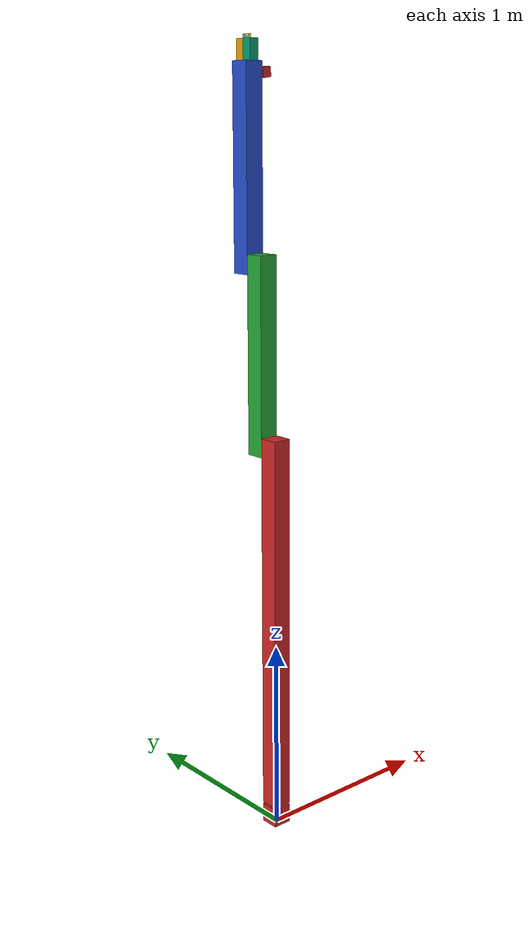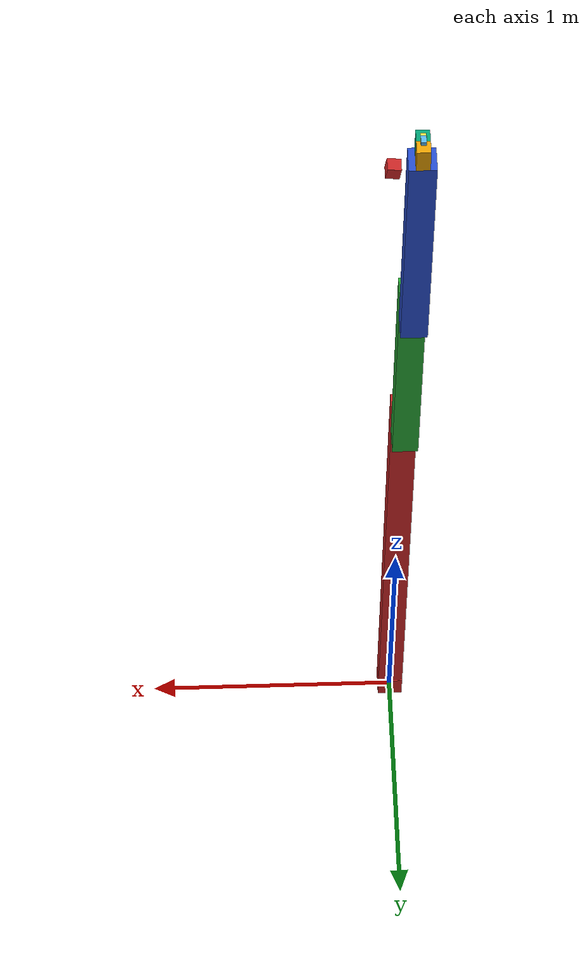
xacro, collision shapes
<?xml version="1.0"?>
<!-- Revolute-Revolute Manipulator -->
<robot name="rrbot" xmlns:xacro="http://www.ros.org/wiki/xacro">

  <!-- Constants for robot dimensions -->
  <xacro:property name="PI" value="3.14"/>
  <xacro:property name="width" value="0.1" />   <!-- Beams are square in length and width -->
  <xacro:property name="height0" value="0.1" />   <!-- base rotation joint -->
  <xacro:property name="height1" value="2" />   <!-- Link 1 -->
  <xacro:property name="height2" value="1" />   <!-- Link 2 -->
  <xacro:property name="height3" value="1" />   <!-- Link 3 -->
  <xacro:property name="axle_offset" value="0.05" /> <!-- Space between joint and end of beam -->
  <xacro:property name="damp" value="0.7" />    <!-- damping coefficient -->
  <xacro:property name="camera_link" value="0.05" /> <!-- Size of square 'camera' box -->

  <!-- Default Inertial -->
  <xacro:macro name="default_inertial" params="z_value i_value mass">
    <inertial>
      <origin xyz="0 0 ${z_value}" rpy="0 0 0"/>
      <mass value="${mass}" />
      <inertia ixx="${i_value}" ixy="0.0" ixz="0.0"
               iyy="${i_value}" iyz="0.0"
               izz="${i_value}" />
      </inertial>
  </xacro:macro>

  <!-- Import Rviz colors -->
  <xacro:include filename="$(find rrbot)/urdf/materials.xacro" />

  <!-- Import gripper URDF -->
  <xacro:include filename="$(find rrbot)/urdf/gripper.xacro" />

  <!-- Import Gazebo elements, including Gazebo colors -->
  <xacro:include filename="$(find rrbot)/urdf/rrbot.gazebo" />

  <!-- Used for fixing rrbot frame to Gazebo world frame -->
  <link name="world"/>

  <joint name="fixed" type="fixed">
    <parent link="world"/>
    <child link="base_link"/>
  </joint>

  <!-- Base Link for rotation -->
  <link name="base_link">
    <visual>
      <origin xyz="0 0 ${height0/2}" rpy="0 0 0"/>
      <geometry>
	<box size="${width} ${width} ${height0}"/>
      </geometry>
      <material name="red"/>
    </visual>

    <collision>
      <origin xyz="0 0 ${height0/2}" rpy="0 0 0"/>
      <geometry>
	<box size="${width} ${width} ${height0}"/>
      </geometry>
    </collision>

    <xacro:default_inertial z_value="${height0/2}" i_value="1.0" mass="1"/>
  </link>

  <!-- Joint between rotation and main Link -->
  <joint name="joint_rot_main" type="revolute">
    <parent link="base_link"/>
    <child link="main_link"/>
    <origin xyz="0 0 ${height0 +0.01 }" rpy="0 0 0"/>
    <axis xyz="0 0 1"/>
    <dynamics damping="${damp}"/>
    <limit effort="100.0" velocity="0.5" lower="-3.14" upper="3.14" />
  </joint>

  <!-- main Link -->
  <link name="main_link">
    <visual>
      <origin xyz="0 0 ${height1/2}" rpy="0 0 0"/>
      <geometry>
	<box size="${width} ${width} ${height1}"/>
      </geometry>
      <material name="red"/>
    </visual>

    <collision>
      <origin xyz="0 0 ${height1/2}" rpy="0 0 0"/>
      <geometry>
	<box size="${width} ${width} ${height1}"/>
      </geometry>
    </collision>

    <xacro:default_inertial z_value="${height1/2}" i_value="1.0" mass="1"/>
  </link>

  <!-- Joint between Base Link and Middle Link -->
  <joint name="joint_main_mid" type="revolute">
    <parent link="main_link"/>
    <child link="mid_link"/>
    <origin xyz="0 ${width} ${height1 - axle_offset}" rpy="0 0 0"/>
    <axis xyz="0 1 0"/>
    <dynamics damping="${damp}"/>
    <limit effort="100.0" velocity="0.5" lower="-3.14" upper="3.14" />
  </joint>

  <!-- Middle Link -->
  <link name="mid_link">
    <visual>
      <origin xyz="0 0 ${height2/2 - axle_offset}" rpy="0 0 0"/>
      <geometry>
	<box size="${width} ${width} ${height2}"/>
      </geometry>
      <material name="green"/>
    </visual>

    <collision>
      <origin xyz="0 0 ${height2/2 - axle_offset}" rpy="0 0 0"/>
      <geometry>
	<box size="${width} ${width} ${height2}"/>
      </geometry>
    </collision>

    <xacro:default_inertial z_value="${height2/2 - axle_offset}" i_value="1.0" mass="1"/>
  </link>

  <!-- Joint between Middle Link and Top Link -->
  <joint name="joint_mid_top" type="revolute">
    <parent link="mid_link"/>
    <child link="top_link"/>
    <origin xyz="0 ${width} ${height2 - axle_offset*2}" rpy="0 0 0"/>
    <axis xyz="0 1 0"/>
    <dynamics damping="${damp}"/>
    <limit effort="100.0" velocity="0.5" lower="-3.14" upper="3.14" />
  </joint>

  <!-- Top Link -->
  <link name="top_link">
    <visual>
      <origin xyz="0 0 ${height3/2 - axle_offset}" rpy="0 0 0"/>
      <geometry>
	<box size="${width} ${width} ${height3}"/>
      </geometry>
      <material name="blue"/>
    </visual>

    <collision>
      <origin xyz="0 0 ${height3/2 - axle_offset}" rpy="0 0 0"/>
      <geometry>
	<box size="${width} ${width} ${height3}"/>
      </geometry>
    </collision>

    <xacro:default_inertial z_value="${height3/2 - axle_offset}" i_value="1.0" mass="1"/>
  </link>

<!-- camera joint-->
  <joint name="camera_joint" type="fixed">

    <origin xyz="${camera_link*2} 0 ${height3 - axle_offset*2}" rpy="0 -1.71 0"/>
    <parent link="top_link"/>
    <child link="camera_link"/>
  </joint>

  <joint name="camera_optical_joint" type="fixed">
    <!-- these values have to be these values otherwise the gazebo camera
        image won't be aligned properly with the frame it is supposedly
        originating from -->
    <origin xyz="0 0 0" rpy="${-pi/2} 0 ${-pi/2}"/>
    <parent link="camera_link"/>
    <child link="camera_link_optical"/>
  </joint>

  <link name="camera_link_optical">
  </link>

  <!-- Camera -->
  <link name="camera_link">
    <collision>
      <origin xyz="0 0 0" rpy="0 0 0"/>
      <geometry>
    <box size="${camera_link} ${camera_link} ${camera_link}"/>
      </geometry>
    </collision>

    <visual>
      <origin xyz="0 0 0" rpy="0 0 0"/>
      <geometry>
    <box size="${camera_link} ${camera_link} ${camera_link}"/>
      </geometry>
      <material name="red"/>
    </visual>

    <inertial>
      <mass value="1e-5" />
      <origin xyz="0 0 0" rpy="0 0 0"/>
      <inertia ixx="1e-6" ixy="0" ixz="0" iyy="1e-6" iyz="0" izz="1e-6" />
    </inertial>
  </link>

  <transmission name="transmission0">
    <type>transmission_interface/SimpleTransmission</type>
    <joint name="joint_rot_main">
      <hardwareInterface>hardware_interface/EffortJointInterface</hardwareInterface>
    </joint>
    <actuator name="motor0">
      <mechanicalReduction>1</mechanicalReduction>
    </actuator>
  </transmission>

  <transmission name="transmission1">
    <type>transmission_interface/SimpleTransmission</type>
    <joint name="joint_main_mid">
      <hardwareInterface>hardware_interface/EffortJointInterface</hardwareInterface>
    </joint>
    <actuator name="motor1">
      <mechanicalReduction>1</mechanicalReduction>
    </actuator>
  </transmission>

  <transmission name="transmission2">
    <type>transmission_interface/SimpleTransmission</type>
    <joint name="joint_mid_top">
      <hardwareInterface>hardware_interface/EffortJointInterface</hardwareInterface>
    </joint>
    <actuator name="motor2">
      <mechanicalReduction>1</mechanicalReduction>
    </actuator>
  </transmission>

</robot>

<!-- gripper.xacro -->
<robot xmlns:xacro="http://www.ros.org/wiki/xacro">

  <!-- Gripper -->
  <joint name="left_gripper_joint" type="revolute">
    <parent link="top_link"/>
    <child link="left_gripper"/>
    <origin xyz="0 0 ${height2 - axle_offset}" rpy="0 -1.57 0"/>
    <axis xyz="0 0 -1"/>
    <limit effort="30.0" lower="-0.548" upper="0.0" velocity="0.1"/>
  </joint>

  <link name="left_gripper">
    <visual>
      <origin rpy="0 0 0" xyz="0 0 0"/>
      <geometry>
        <mesh filename="package://rrbot/meshes/l_finger.dae"/>
      </geometry>
    </visual>

    <collision>
      <origin rpy="0 0 0" xyz="0.05 0.025 0"/>
      <geometry>
        <box size="0.1 0.05 0.05"/>
      </geometry>
    </collision>
    <xacro:default_inertial z_value="0" i_value="1e-6" mass="1"/>
  </link>

  <joint name="left_tip_joint" type="fixed">
    <parent link="left_gripper"/>
    <child link="left_tip"/>
  </joint>

  <link name="left_tip">
    <visual>
      <origin rpy="0 0 0" xyz="0.09137 0.00495 0"/>
      <geometry>
        <mesh filename="package://rrbot/meshes/l_finger_tip.dae"/>
      </geometry>
    </visual>

    <collision>
      <origin rpy="0 0 0" xyz="0.11 0.005 0"/>
      <geometry>
        <box size="0.02 0.03 0.02"/>
      </geometry>
    </collision>
    <xacro:default_inertial z_value="0" i_value="1e-6" mass="1e-5"/>
  </link>

  <joint name="right_gripper_joint" type="revolute">
    <parent link="top_link"/>
    <child link="right_gripper"/>
    <origin xyz="0 0 ${height2 - axle_offset}" rpy="0 -1.57 0"/>
    <axis xyz="0 0 1"/>
    <limit effort="30.0" lower="-0.548" upper="0.0" velocity="0.1"/>
  </joint>

  <link name="right_gripper">
    <visual>
      <origin rpy="3.1415 0 0" xyz="0 0 0"/>
      <geometry>
        <mesh filename="package://rrbot/meshes/l_finger.dae"/>
      </geometry>
    </visual>

    <collision>
      <origin rpy="0 0 0" xyz="0.05 -0.025 0"/>
      <geometry>
        <box size="0.1 0.05 0.05"/>
      </geometry>
    </collision>
    <xacro:default_inertial z_value="0" i_value="1e-6" mass="1"/>
  </link>

  <joint name="right_tip_joint" type="fixed">
    <parent link="right_gripper"/>
    <child link="right_tip"/>
  </joint>

  <link name="right_tip">
    <visual>
      <origin rpy="-3.1415 0 0" xyz="0.09137 0.00495 0"/>
      <geometry>
        <mesh filename="package://rrbot/meshes/l_finger_tip.dae"/>
      </geometry>
    </visual>

    <collision>
      <origin rpy="0 0 0" xyz="0.11 -0.005 0"/>
      <geometry>
        <box size="0.02 0.03 0.02"/>
      </geometry>
    </collision>
    <xacro:default_inertial z_value="0" i_value="1e-6" mass="1e-5"/>
  </link>

  <transmission name="gripper_transmission1">
    <type>transmission_interface/SimpleTransmission</type>
    <joint name="left_gripper_joint">
      <hardwareInterface>hardware_interface/EffortJointInterface</hardwareInterface>
    </joint>
    <actuator name="gripper_motor1">
      <mechanicalReduction>1</mechanicalReduction>
    </actuator>
  </transmission>

  <transmission name="gripper_transmission2">
    <type>transmission_interface/SimpleTransmission</type>
    <joint name="right_gripper_joint">
      <hardwareInterface>hardware_interface/EffortJointInterface</hardwareInterface>
    </joint>
    <actuator name="gripper_motor2">
      <mechanicalReduction>1</mechanicalReduction>
    </actuator>
  </transmission>

</robot>
